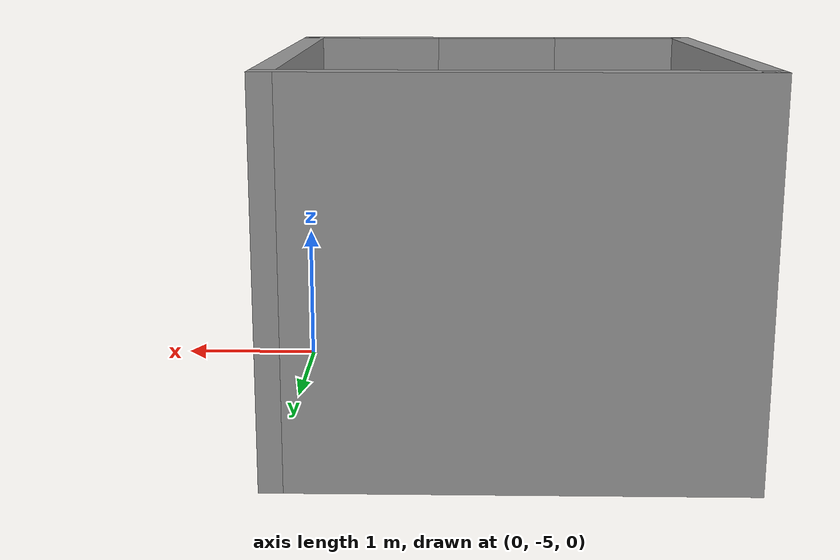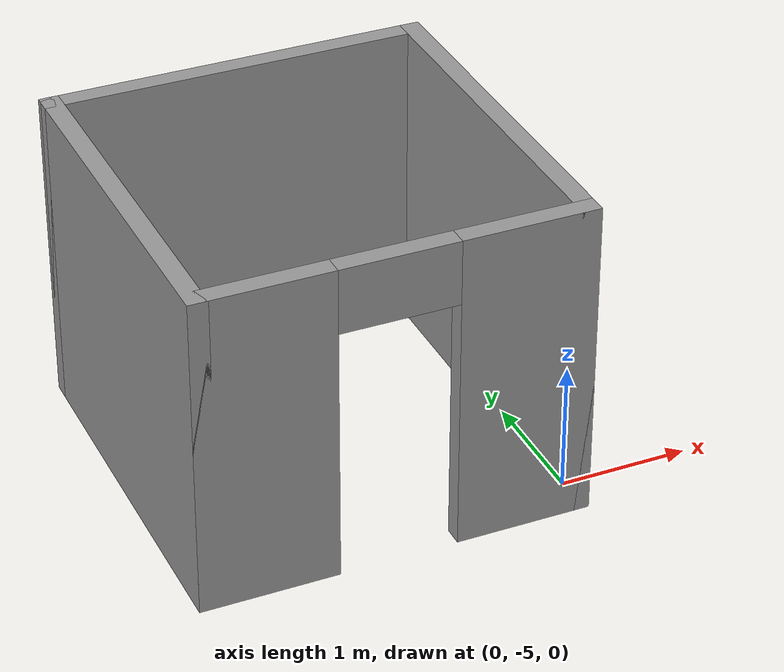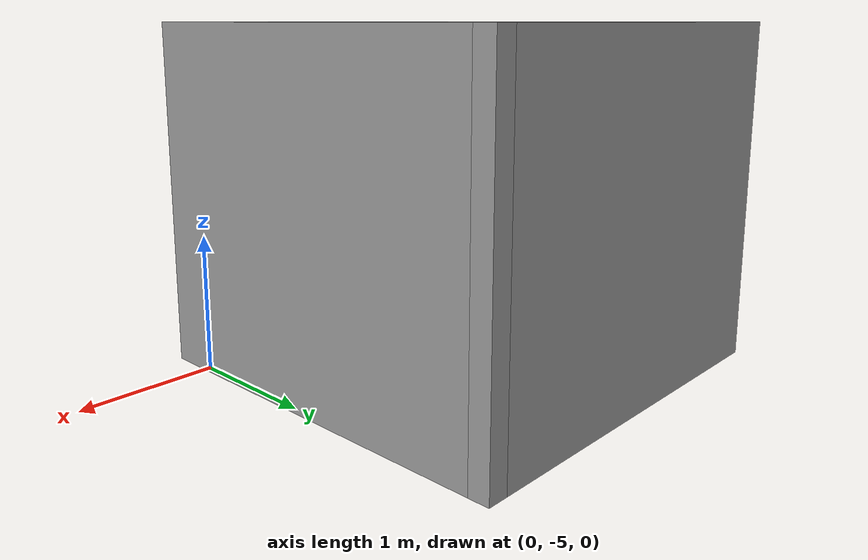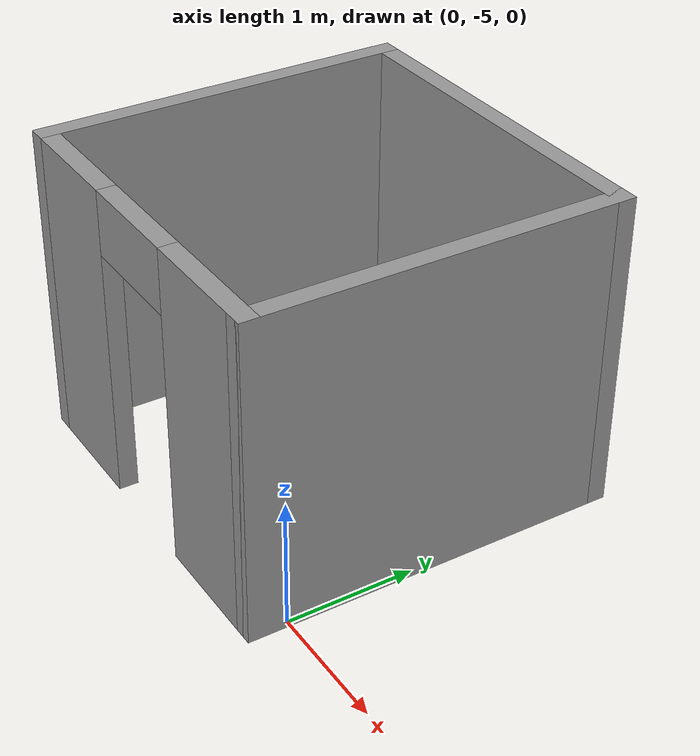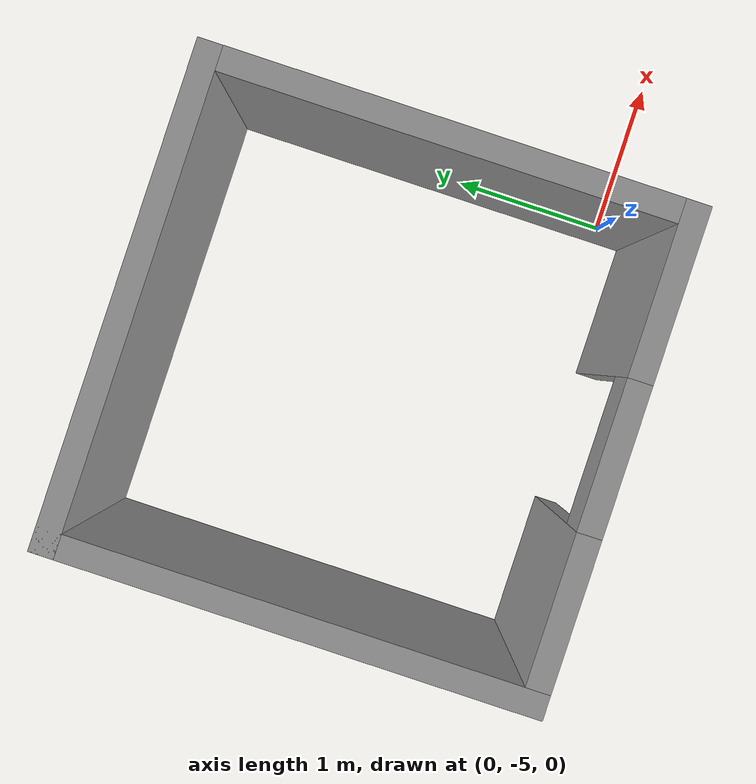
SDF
<?xml version='1.0'?>
<sdf version='1.6'>
  <model name='SmallRoom-1door'>
    <pose frame=''>-1.455 -3.825 0 0 -0 0</pose>
    <link name='Wall_0'>
      <collision name='Wall_0_Collision'>
        <geometry>
          <box>
            <size>3 0.15 2.5</size>
          </box>
        </geometry>
        <pose frame=''>0 0 1.25 0 -0 0</pose>
      </collision>
      <visual name='Wall_0_Visual'>
        <pose frame=''>0 0 1.25 0 -0 0</pose>
        <geometry>
          <box>
            <size>3 0.15 2.5</size>
          </box>
        </geometry>
        <material>
          <script>
            <uri>file://media/materials/scripts/gazebo.material</uri>
            <name>Gazebo/Grey</name>
          </script>
          <ambient>1 1 1 1</ambient>
        </material>
        <meta>
          <layer>0</layer>
        </meta>
      </visual>
      <pose frame=''>0 1.425 0 0 -0 3.14159</pose>
    </link>
    <link name='Wall_1'>
      <collision name='Wall_1_Collision'>
        <geometry>
          <box>
            <size>0.15 0.15 2.5</size>
          </box>
        </geometry>
        <pose frame=''>0 0 1.25 0 -0 0</pose>
      </collision>
      <visual name='Wall_1_Visual'>
        <pose frame=''>0 0 1.25 0 -0 0</pose>
        <geometry>
          <box>
            <size>0.15 0.15 2.5</size>
          </box>
        </geometry>
        <material>
          <script>
            <uri>file://media/materials/scripts/gazebo.material</uri>
            <name>Gazebo/Grey</name>
          </script>
          <ambient>1 1 1 1</ambient>
        </material>
        <meta>
          <layer>0</layer>
        </meta>
      </visual>
      <pose frame=''>-1.425 1.425 0 0 -0 0</pose>
    </link>
    <link name='Wall_2'>
      <collision name='Wall_2_Collision'>
        <geometry>
          <box>
            <size>3 0.15 2.5</size>
          </box>
        </geometry>
        <pose frame=''>0 0 1.25 0 -0 0</pose>
      </collision>
      <visual name='Wall_2_Visual'>
        <pose frame=''>0 0 1.25 0 -0 0</pose>
        <geometry>
          <box>
            <size>3 0.15 2.5</size>
          </box>
        </geometry>
        <material>
          <script>
            <uri>file://media/materials/scripts/gazebo.material</uri>
            <name>Gazebo/Grey</name>
          </script>
          <ambient>1 1 1 1</ambient>
        </material>
        <meta>
          <layer>0</layer>
        </meta>
      </visual>
      <pose frame=''>-1.425 0 0 0 -0 -1.5708</pose>
    </link>
    <link name='Wall_3'>
      <pose frame=''>0 -1.425 0 0 -0 0</pose>
      <visual name='Wall_3_Visual_0'>
        <pose frame=''>-0.972659 0 1.25 0 -0 0</pose>
        <geometry>
          <box>
            <size>1.05468 0.15 2.5</size>
          </box>
        </geometry>
        <material>
          <script>
            <uri>file://media/materials/scripts/gazebo.material</uri>
            <name>Gazebo/Grey</name>
          </script>
          <ambient>1 1 1 1</ambient>
        </material>
        <meta>
          <layer>0</layer>
        </meta>
      </visual>
      <collision name='Wall_3_Collision_0'>
        <geometry>
          <box>
            <size>1.05468 0.15 2.5</size>
          </box>
        </geometry>
        <pose frame=''>-0.972659 0 1.25 0 -0 0</pose>
      </collision>
      <visual name='Wall_3_Visual_1'>
        <pose frame=''>0.977341 0 1.25 0 -0 0</pose>
        <geometry>
          <box>
            <size>1.04532 0.15 2.5</size>
          </box>
        </geometry>
        <material>
          <script>
            <uri>file://media/materials/scripts/gazebo.material</uri>
            <name>Gazebo/Grey</name>
          </script>
          <ambient>1 1 1 1</ambient>
        </material>
        <meta>
          <layer>0</layer>
        </meta>
      </visual>
      <collision name='Wall_3_Collision_1'>
        <geometry>
          <box>
            <size>1.04532 0.15 2.5</size>
          </box>
        </geometry>
        <pose frame=''>0.977341 0 1.25 0 -0 0</pose>
      </collision>
      <visual name='Wall_3_Visual_2'>
        <pose frame=''>0.004681 0 2.25 0 -0 0</pose>
        <geometry>
          <box>
            <size>0.9 0.15 0.5</size>
          </box>
        </geometry>
        <material>
          <script>
            <uri>file://media/materials/scripts/gazebo.material</uri>
            <name>Gazebo/Grey</name>
          </script>
          <ambient>1 1 1 1</ambient>
        </material>
        <meta>
          <layer>0</layer>
        </meta>
      </visual>
      <collision name='Wall_3_Collision_2'>
        <geometry>
          <box>
            <size>0.9 0.15 0.5</size>
          </box>
        </geometry>
        <pose frame=''>0.004681 0 2.25 0 -0 0</pose>
      </collision>
    </link>
    <link name='Wall_4'>
      <collision name='Wall_4_Collision'>
        <geometry>
          <box>
            <size>3 0.15 2.5</size>
          </box>
        </geometry>
        <pose frame=''>0 0 1.25 0 -0 0</pose>
      </collision>
      <visual name='Wall_4_Visual'>
        <pose frame=''>0 0 1.25 0 -0 0</pose>
        <geometry>
          <box>
            <size>3 0.15 2.5</size>
          </box>
        </geometry>
        <material>
          <script>
            <uri>file://media/materials/scripts/gazebo.material</uri>
            <name>Gazebo/Grey</name>
          </script>
          <ambient>1 1 1 1</ambient>
        </material>
        <meta>
          <layer>0</layer>
        </meta>
      </visual>
      <pose frame=''>1.425 0 0 0 -0 1.5708</pose>
    </link>
    <static>1</static>
  </model>
</sdf>
